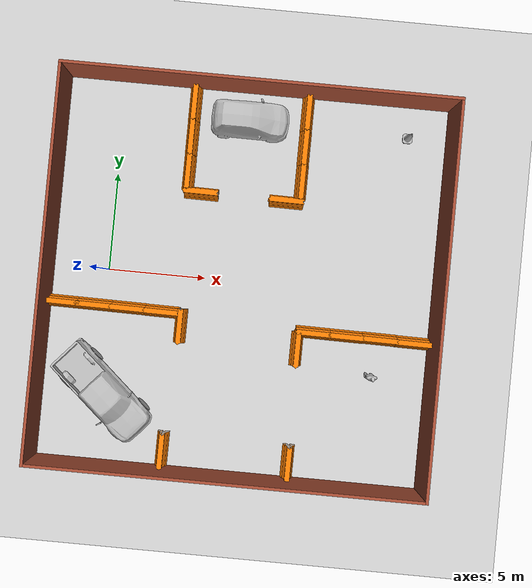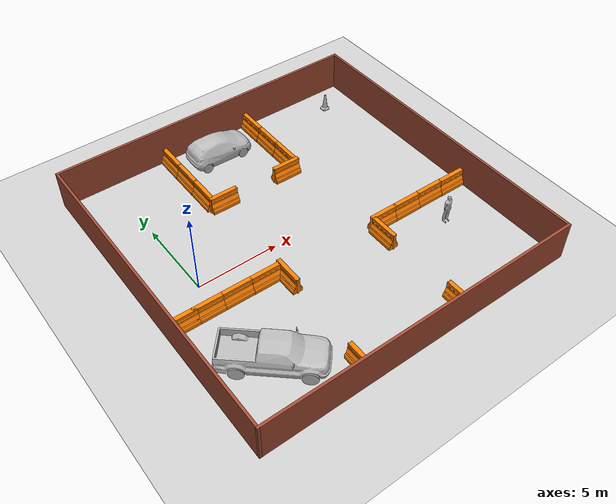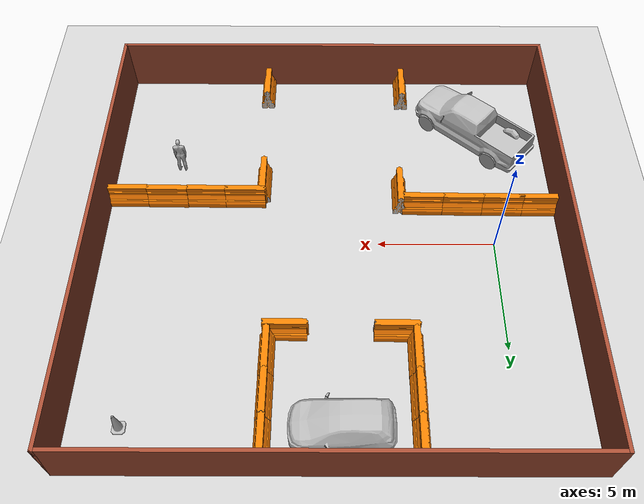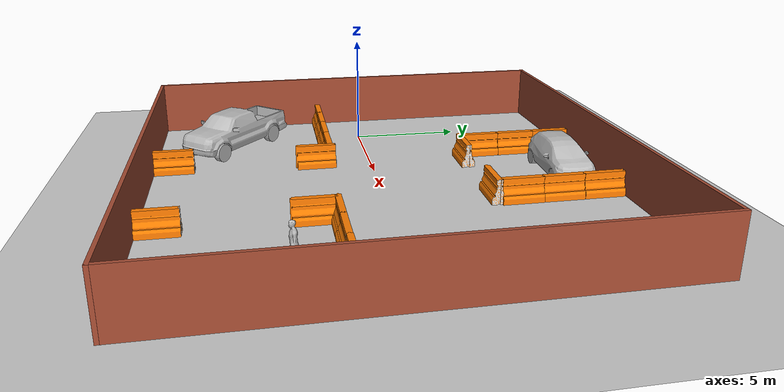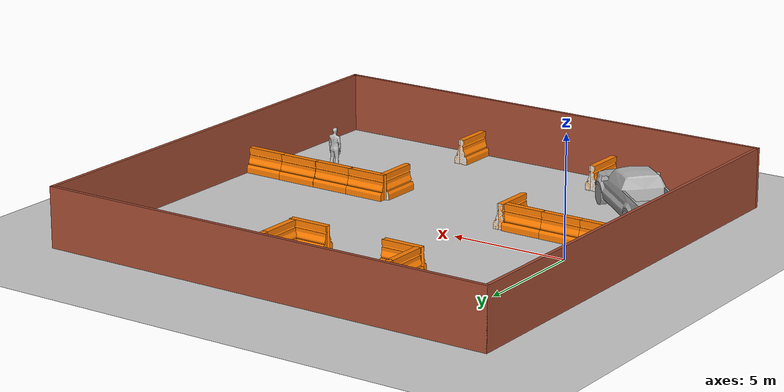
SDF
<sdf version="1.7">
 <world name="default">
  <light name="sun" type="directional">
   <pose>0 0 10 0 -0 0</pose>
   <diffuse>0.8 0.8 0.8 1</diffuse>
   <specular>0.2 0.2 0.2 1</specular>
   <attenuation>
    <range>1000</range>
    <constant>0.9</constant>
    <linear>0.01</linear>
    <quadratic>0.001</quadratic>
   </attenuation>
   <direction>-0.5 0.1 -0.9</direction>
   <spot><inner_angle>0</inner_angle><outer_angle>0</outer_angle><falloff>0</falloff></spot>
  </light>
  <model name="ground_plane">
   <static>1</static>
   <link name="link">
    <collision name="collision">
     <geometry><plane><normal>0 0 1</normal><size>100 100</size></plane></geometry>
     <surface>
      <contact><collide_bitmask>65535</collide_bitmask></contact>
      <friction><ode><mu>100</mu><mu2>50</mu2></ode></friction>
     </surface>
    </collision>
    <visual name="visual">
     <cast_shadows>0</cast_shadows>
     <geometry><plane><normal>0 0 1</normal><size>100 100</size></plane></geometry>
     <material>
      <script><uri>file://media/materials/scripts/gazebo.material</uri><name>Gazebo/Grey</name></script>
     </material>
    </visual>
   </link>
  </model>
  <gravity>0 0 -9.8</gravity>
  <magnetic_field>6e-06 2.3e-05 -4.2e-05</magnetic_field>
  <atmosphere type="adiabatic"/>
  <physics type="ode">
   <max_step_size>0.001</max_step_size>
   <real_time_factor>1</real_time_factor>
   <real_time_update_rate>1000</real_time_update_rate>
  </physics>
  <scene><ambient>0.4 0.4 0.4 1</ambient><background>0.7 0.7 0.7 1</background><shadows>1</shadows></scene>
  <spherical_coordinates>
   <surface_model>EARTH_WGS84</surface_model>
   <latitude_deg>0</latitude_deg>
   <longitude_deg>0</longitude_deg>
   <elevation>0</elevation>
   <heading_deg>0</heading_deg>
  </spherical_coordinates>
  <model name="wall2x2">
   <pose>7 0 0 0 -0 0</pose>
   <link name="Wall_10">
    <collision name="Wall_10_Collision">
     <geometry><box><size>20 0.15 2.5</size></box></geometry>
     <pose>0 0 1.25 0 -0 0</pose>
    </collision>
    <visual name="Wall_10_Visual">
     <pose>0 0 1.25 0 -0 0</pose>
     <geometry><box><size>20 0.15 2.5</size></box></geometry>
     <material>
      <script><uri>file://media/materials/scripts/gazebo.material</uri><name>Gazebo/Bricks</name></script>
      <ambient>1 1 1 1</ambient>
     </material>
     <meta><layer>0</layer></meta>
    </visual>
    <pose>-0 -9.925 0 0 -0 3.14159</pose>
   </link>
   <link name="Wall_11">
    <collision name="Wall_11_Collision">
     <geometry><box><size>20 0.15 2.5</size></box></geometry>
     <pose>0 0 1.25 0 -0 0</pose>
    </collision>
    <visual name="Wall_11_Visual">
     <pose>0 0 1.25 0 -0 0</pose>
     <geometry><box><size>20 0.15 2.5</size></box></geometry>
     <material>
      <script><uri>file://media/materials/scripts/gazebo.material</uri><name>Gazebo/Bricks</name></script>
      <ambient>1 1 1 1</ambient>
     </material>
     <meta><layer>0</layer></meta>
    </visual>
    <pose>-9.925 -0 0 0 -0 1.5708</pose>
   </link>
   <link name="Wall_8">
    <collision name="Wall_8_Collision">
     <geometry><box><size>20 0.15 2.5</size></box></geometry>
     <pose>0 0 1.25 0 -0 0</pose>
    </collision>
    <visual name="Wall_8_Visual">
     <pose>0 0 1.25 0 -0 0</pose>
     <geometry><box><size>20 0.15 2.5</size></box></geometry>
     <material>
      <script><uri>file://media/materials/scripts/gazebo.material</uri><name>Gazebo/Bricks</name></script>
      <ambient>1 1 1 1</ambient>
     </material>
     <meta><layer>0</layer></meta>
    </visual>
    <pose>-0 9.925 0 0 -0 0</pose>
   </link>
   <link name="Wall_9">
    <collision name="Wall_9_Collision">
     <geometry><box><size>20 0.15 2.5</size></box></geometry>
     <pose>0 0 1.25 0 -0 0</pose>
    </collision>
    <visual name="Wall_9_Visual">
     <pose>0 0 1.25 0 -0 0</pose>
     <geometry><box><size>20 0.15 2.5</size></box></geometry>
     <material>
      <script><uri>file://media/materials/scripts/gazebo.material</uri><name>Gazebo/Bricks</name></script>
      <ambient>1 1 1 1</ambient>
     </material>
     <meta><layer>0</layer></meta>
    </visual>
    <pose>9.925 -0 0 0 -0 -1.5708</pose>
   </link>
   <static>1</static>
  </model>
  <model name="pickup">
   <static>1</static>
   <link name="link">
    <collision name="collision">
     <pose>0 0 0 0 0 -1.5708</pose>
     <geometry><mesh><uri>model://pickup/meshes/pickup.dae</uri></mesh></geometry>
    </collision>
    <visual name="visual">
     <pose>0 0 0 0 0 -1.5708</pose>
     <geometry><mesh><uri>model://pickup/meshes/pickup.dae</uri></mesh></geometry>
    </visual>
   </link>
   <pose>0.481771 -6.33979 0 0 0 -0.72782</pose>
  </model>
  <model name="drc_practice_organge_jersey_barrier_1_clone_0">
   <static>1</static>
   <link name="link">
    <visual name="visual">
     <geometry>
      <mesh><uri>model://drc_practice_orange_jersey_barrier/meshes/jersey_barrier.dae</uri></mesh>
     </geometry>
    </visual>
    <collision name="collision">
     <geometry>
      <mesh><uri>model://drc_practice_orange_jersey_barrier/meshes/jersey_barrier.dae</uri></mesh>
     </geometry>
    </collision>
   </link>
   <pose>3.9874 -2.54285 0 0 -0 0</pose>
  </model>
  <model name="drc_practice_organge_jersey_barrier_1_clone_0_clone">
   <static>1</static>
   <link name="link">
    <visual name="visual">
     <geometry>
      <mesh><uri>model://drc_practice_orange_jersey_barrier/meshes/jersey_barrier.dae</uri></mesh>
     </geometry>
    </visual>
    <collision name="collision">
     <geometry>
      <mesh><uri>model://drc_practice_orange_jersey_barrier/meshes/jersey_barrier.dae</uri></mesh>
     </geometry>
    </collision>
   </link>
   <pose>3.63316 -8.94832 0 0 -0 0</pose>
  </model>
  <model name="drc_practice_organge_jersey_barrier_1_clone_0_clone_0">
   <static>1</static>
   <link name="link">
    <visual name="visual">
     <geometry>
      <mesh><uri>model://drc_practice_orange_jersey_barrier/meshes/jersey_barrier.dae</uri></mesh>
     </geometry>
    </visual>
    <collision name="collision">
     <geometry>
      <mesh><uri>model://drc_practice_orange_jersey_barrier/meshes/jersey_barrier.dae</uri></mesh>
     </geometry>
    </collision>
   </link>
   <pose>3.00152 -1.90253 0 0 0 -1.57465</pose>
  </model>
  <model name="drc_practice_organge_jersey_barrier_1_clone_0_clone_0_clone">
   <static>1</static>
   <link name="link">
    <visual name="visual">
     <geometry>
      <mesh><uri>model://drc_practice_orange_jersey_barrier/meshes/jersey_barrier.dae</uri></mesh>
     </geometry>
    </visual>
    <collision name="collision">
     <geometry>
      <mesh><uri>model://drc_practice_orange_jersey_barrier/meshes/jersey_barrier.dae</uri></mesh>
     </geometry>
    </collision>
   </link>
   <pose>1.25353 -1.87866 0 0 0 -1.57465</pose>
  </model>
  <model name="drc_practice_organge_jersey_barrier_1_clone_0_clone_0_clone_0">
   <static>1</static>
   <link name="link">
    <visual name="visual">
     <geometry>
      <mesh><uri>model://drc_practice_orange_jersey_barrier/meshes/jersey_barrier.dae</uri></mesh>
     </geometry>
    </visual>
    <collision name="collision">
     <geometry>
      <mesh><uri>model://drc_practice_orange_jersey_barrier/meshes/jersey_barrier.dae</uri></mesh>
     </geometry>
    </collision>
   </link>
   <pose>-0.49364 -1.86203 0 0 0 -1.57465</pose>
  </model>
  <model name="drc_practice_organge_jersey_barrier_1_clone_0_clone_0_clone_1">
   <static>1</static>
   <link name="link">
    <visual name="visual">
     <geometry>
      <mesh><uri>model://drc_practice_orange_jersey_barrier/meshes/jersey_barrier.dae</uri></mesh>
     </geometry>
    </visual>
    <collision name="collision">
     <geometry>
      <mesh><uri>model://drc_practice_orange_jersey_barrier/meshes/jersey_barrier.dae</uri></mesh>
     </geometry>
    </collision>
   </link>
   <pose>-2.03202 -1.8496 0 0 0 -1.57465</pose>
  </model>
  <model name="drc_practice_organge_jersey_barrier_1_clone_0_clone_0_clone_2">
   <static>1</static>
   <link name="link">
    <visual name="visual">
     <geometry>
      <mesh><uri>model://drc_practice_orange_jersey_barrier/meshes/jersey_barrier.dae</uri></mesh>
     </geometry>
    </visual>
    <collision name="collision">
     <geometry>
      <mesh><uri>model://drc_practice_orange_jersey_barrier/meshes/jersey_barrier.dae</uri></mesh>
     </geometry>
    </collision>
   </link>
   <pose>16.0094 -2.32695 0 0 0 -1.57465</pose>
  </model>
  <model name="drc_practice_organge_jersey_barrier_1_clone_0_clone_0_clone_3">
   <static>1</static>
   <link name="link">
    <visual name="visual">
     <geometry>
      <mesh><uri>model://drc_practice_orange_jersey_barrier/meshes/jersey_barrier.dae</uri></mesh>
     </geometry>
    </visual>
    <collision name="collision">
     <geometry>
      <mesh><uri>model://drc_practice_orange_jersey_barrier/meshes/jersey_barrier.dae</uri></mesh>
     </geometry>
    </collision>
   </link>
   <pose>14.2651 -2.2988 0 0 0 -1.57465</pose>
  </model>
  <model name="drc_practice_organge_jersey_barrier_1_clone_0_clone_0_clone_4">
   <static>1</static>
   <link name="link">
    <visual name="visual">
     <geometry>
      <mesh><uri>model://drc_practice_orange_jersey_barrier/meshes/jersey_barrier.dae</uri></mesh>
     </geometry>
    </visual>
    <collision name="collision">
     <geometry>
      <mesh><uri>model://drc_practice_orange_jersey_barrier/meshes/jersey_barrier.dae</uri></mesh>
     </geometry>
    </collision>
   </link>
   <pose>12.5066 -2.29639 0 0 0 -1.57465</pose>
  </model>
  <model name="drc_practice_organge_jersey_barrier_1_clone_0_clone_0_clone_5">
   <static>1</static>
   <link name="link">
    <visual name="visual">
     <geometry>
      <mesh><uri>model://drc_practice_orange_jersey_barrier/meshes/jersey_barrier.dae</uri></mesh>
     </geometry>
    </visual>
    <collision name="collision">
     <geometry>
      <mesh><uri>model://drc_practice_orange_jersey_barrier/meshes/jersey_barrier.dae</uri></mesh>
     </geometry>
    </collision>
   </link>
   <pose>10.8281 -2.28087 0 0 0 -1.57465</pose>
  </model>
  <model name="drc_practice_organge_jersey_barrier_1_clone_0_clone_clone">
   <static>1</static>
   <link name="link">
    <visual name="visual">
     <geometry>
      <mesh><uri>model://drc_practice_orange_jersey_barrier/meshes/jersey_barrier.dae</uri></mesh>
     </geometry>
    </visual>
    <collision name="collision">
     <geometry>
      <mesh><uri>model://drc_practice_orange_jersey_barrier/meshes/jersey_barrier.dae</uri></mesh>
     </geometry>
    </collision>
   </link>
   <pose>10.0667 -3.17297 0 0 -0 0</pose>
  </model>
  <model name="drc_practice_organge_jersey_barrier_1_clone_0_clone_clone_0">
   <static>1</static>
   <link name="link">
    <visual name="visual">
     <geometry>
      <mesh><uri>model://drc_practice_orange_jersey_barrier/meshes/jersey_barrier.dae</uri></mesh>
     </geometry>
    </visual>
    <collision name="collision">
     <geometry>
      <mesh><uri>model://drc_practice_orange_jersey_barrier/meshes/jersey_barrier.dae</uri></mesh>
     </geometry>
    </collision>
   </link>
   <pose>10.1395 -9.03507 0 0 -0 0</pose>
  </model>
  <model name="drc_practice_organge_jersey_barrier_1_clone_0_clone_clone_clone">
   <static>1</static>
   <link name="link">
    <visual name="visual">
     <geometry>
      <mesh><uri>model://drc_practice_orange_jersey_barrier/meshes/jersey_barrier.dae</uri></mesh>
     </geometry>
    </visual>
    <collision name="collision">
     <geometry>
      <mesh><uri>model://drc_practice_orange_jersey_barrier/meshes/jersey_barrier.dae</uri></mesh>
     </geometry>
    </collision>
   </link>
   <pose>9.52728 8.92799 0 0 -0 0</pose>
  </model>
  <model name="drc_practice_organge_jersey_barrier_1_clone_0_clone_clone_clone_0">
   <static>1</static>
   <link name="link">
    <visual name="visual">
     <geometry>
      <mesh><uri>model://drc_practice_orange_jersey_barrier/meshes/jersey_barrier.dae</uri></mesh>
     </geometry>
    </visual>
    <collision name="collision">
     <geometry>
      <mesh><uri>model://drc_practice_orange_jersey_barrier/meshes/jersey_barrier.dae</uri></mesh>
     </geometry>
    </collision>
   </link>
   <pose>9.52831 7.14371 0 0 -0 0</pose>
  </model>
  <model name="drc_practice_organge_jersey_barrier_1_clone_0_clone_clone_clone_1">
   <static>1</static>
   <link name="link">
    <visual name="visual">
     <geometry>
      <mesh><uri>model://drc_practice_orange_jersey_barrier/meshes/jersey_barrier.dae</uri></mesh>
     </geometry>
    </visual>
    <collision name="collision">
     <geometry>
      <mesh><uri>model://drc_practice_orange_jersey_barrier/meshes/jersey_barrier.dae</uri></mesh>
     </geometry>
    </collision>
   </link>
   <pose>9.52992 5.37145 0 0 -0 0</pose>
  </model>
  <model name="drc_practice_organge_jersey_barrier_1_clone_0_clone_clone_clone_2">
   <static>1</static>
   <link name="link">
    <visual name="visual">
     <geometry>
      <mesh><uri>model://drc_practice_orange_jersey_barrier/meshes/jersey_barrier.dae</uri></mesh>
     </geometry>
    </visual>
    <collision name="collision">
     <geometry>
      <mesh><uri>model://drc_practice_orange_jersey_barrier/meshes/jersey_barrier.dae</uri></mesh>
     </geometry>
    </collision>
   </link>
   <pose>3.69164 8.92788 0 0 -0 0</pose>
  </model>
  <model name="drc_practice_organge_jersey_barrier_1_clone_0_clone_clone_clone_3">
   <static>1</static>
   <link name="link">
    <visual name="visual">
     <geometry>
      <mesh><uri>model://drc_practice_orange_jersey_barrier/meshes/jersey_barrier.dae</uri></mesh>
     </geometry>
    </visual>
    <collision name="collision">
     <geometry>
      <mesh><uri>model://drc_practice_orange_jersey_barrier/meshes/jersey_barrier.dae</uri></mesh>
     </geometry>
    </collision>
   </link>
   <pose>3.69053 7.15041 0 0 -0 0</pose>
  </model>
  <model name="drc_practice_organge_jersey_barrier_1_clone_0_clone_clone_clone_4">
   <static>1</static>
   <link name="link">
    <visual name="visual">
     <geometry>
      <mesh><uri>model://drc_practice_orange_jersey_barrier/meshes/jersey_barrier.dae</uri></mesh>
     </geometry>
    </visual>
    <collision name="collision">
     <geometry>
      <mesh><uri>model://drc_practice_orange_jersey_barrier/meshes/jersey_barrier.dae</uri></mesh>
     </geometry>
    </collision>
   </link>
   <pose>3.68965 5.37159 0 0 -0 0</pose>
  </model>
  <model name="drc_practice_organge_jersey_barrier_1_clone_0_clone_0_clone_5_clone">
   <static>1</static>
   <link name="link">
    <visual name="visual">
     <geometry>
      <mesh><uri>model://drc_practice_orange_jersey_barrier/meshes/jersey_barrier.dae</uri></mesh>
     </geometry>
    </visual>
    <collision name="collision">
     <geometry>
      <mesh><uri>model://drc_practice_orange_jersey_barrier/meshes/jersey_barrier.dae</uri></mesh>
     </geometry>
    </collision>
   </link>
   <pose>8.84452 4.33477 0 0 0 -1.57465</pose>
  </model>
  <model name="drc_practice_organge_jersey_barrier_1_clone_0_clone_0_clone_5_clone_0">
   <static>1</static>
   <link name="link">
    <visual name="visual">
     <geometry>
      <mesh><uri>model://drc_practice_orange_jersey_barrier/meshes/jersey_barrier.dae</uri></mesh>
     </geometry>
    </visual>
    <collision name="collision">
     <geometry>
      <mesh><uri>model://drc_practice_orange_jersey_barrier/meshes/jersey_barrier.dae</uri></mesh>
     </geometry>
    </collision>
   </link>
   <pose>4.44052 4.36881 0 0 0 -1.57465</pose>
  </model>
  <model name="hatchback">
   <static>1</static>
   <link name="link">
    <collision name="collision">
     <pose>0 0 0 0 -0 1.5708</pose>
     <geometry>
      <mesh><scale>0.0254 0.0254 0.0254</scale><uri>model://hatchback/meshes/hatchback.obj</uri></mesh>
     </geometry>
    </collision>
    <visual name="visual">
     <pose>0 0 0 0 -0 1.5708</pose>
     <geometry>
      <mesh><scale>0.0254 0.0254 0.0254</scale><uri>model://hatchback/meshes/hatchback.obj</uri></mesh>
     </geometry>
    </visual>
   </link>
   <pose>6.25657 8.32002 0 0 -0 0</pose>
  </model>
  <model name="person_standing">
   <link name="link">
    <inertial>
     <pose>0 -0.1 0.95 0 -0 0</pose>
     <mass>80</mass>
     <inertia><ixx>24.88</ixx><ixy>0</ixy><ixz>0</ixz><iyy>25.73</iyy><iyz>0</iyz><izz>2.48</izz></inertia>
    </inertial>
    <collision name="bottom">
     <pose>0 -0.1 0.01 0 -0 0</pose>
     <geometry><box><size>0.5 0.35 0.02</size></box></geometry>
    </collision>
    <collision name="person">
     <pose>0 0 0.02 0.04 -0 0</pose>
     <geometry><mesh><uri>model://person_standing/meshes/standing.dae</uri></mesh></geometry>
    </collision>
    <visual name="visual">
     <pose>0 0 0.02 0.04 -0 0</pose>
     <geometry><mesh><uri>model://person_standing/meshes/standing.dae</uri></mesh></geometry>
    </visual>
   </link>
   <pose>13.8806 -4.12988 -0 -0 -1e-06 -3e-06</pose>
  </model>
  <model name="Construction Cone">
   <link name="link">
    <collision name="collision">
     <geometry>
      <mesh><scale>10 10 10</scale><uri>model://construction_cone/meshes/construction_cone.dae</uri></mesh>
     </geometry>
    </collision>
    <visual name="visual">
     <geometry>
      <mesh><scale>10 10 10</scale><uri>model://construction_cone/meshes/construction_cone.dae</uri></mesh>
     </geometry>
    </visual>
    <inertial>
     <inertia><ixx>1</ixx><ixy>0</ixy><ixz>0</ixz><iyy>1</iyy><iyz>0</iyz><izz>1</izz></inertia>
     <mass>1</mass>
    </inertial>
   </link>
   <pose>14.8456 8.24071 -0 0 -1e-06 0</pose>
  </model>
 </world>
</sdf>
